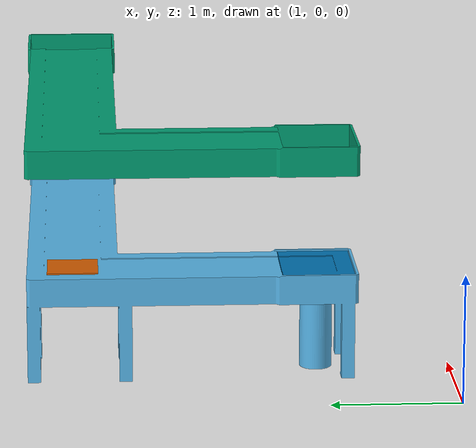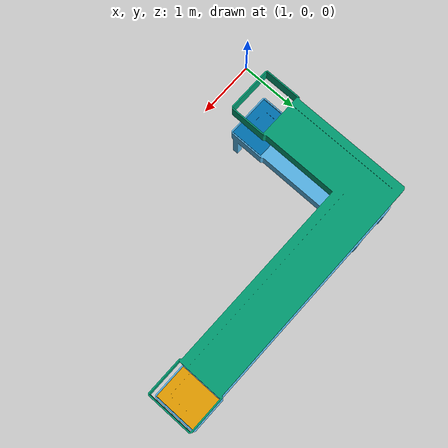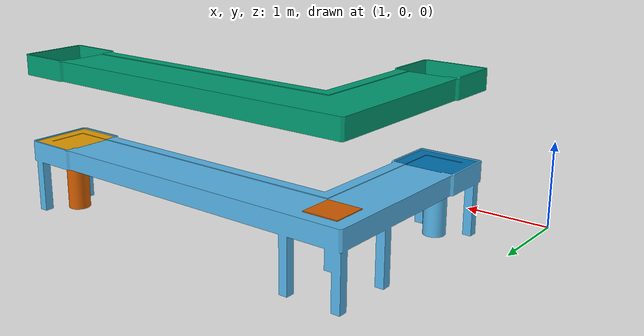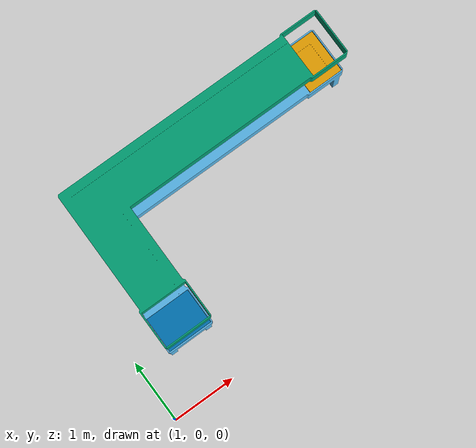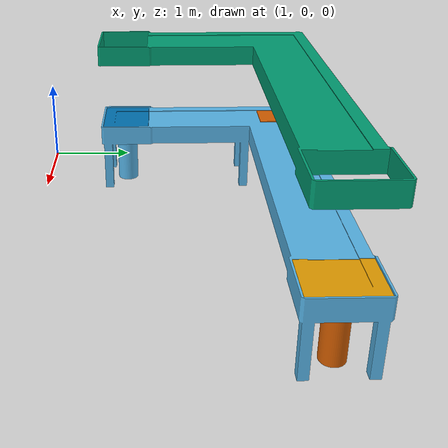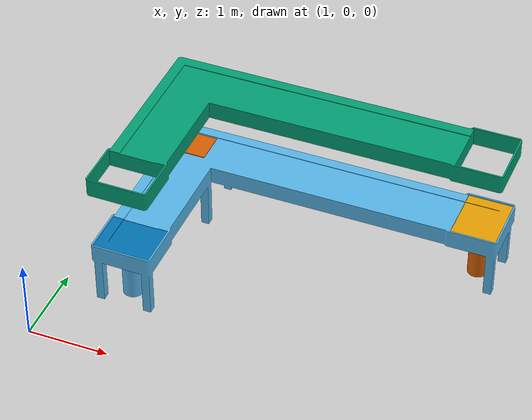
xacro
<?xml version="1.0"?>
<robot name="slider_lift_system" xmlns:xacro="http://www.ros.org/wiki/xacro">

    <link name="world" />

    <xacro:include filename="$(find slider_description)/urdf/lift.xacro" />
    <xacro:include filename="$(find slider_description)/urdf/carrier.xacro" />

    <xacro:arg name="name_space" default="" />
    <xacro:arg name="controller_yaml" default="" />

    <gazebo>
        <self_collide>true</self_collide>
        <plugin filename="gz_ros2_control-system" name="gz_ros2_control::GazeboSimROS2ControlPlugin">
            <ros>
                <namespace>$(arg name_space)</namespace>
            </ros>
            <parameters>$(arg controller_yaml)</parameters>
        </plugin>
    </gazebo>
</robot>

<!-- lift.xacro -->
<robot name="slider_lift_system" xmlns:xacro="http://www.ros.org/wiki/xacro">
    <xacro:include filename="$(find slider_description)/urdf/lift/lift_macro.xacro" />
    <xacro:include filename="$(find slider_description)/urdf/lift/lift_ros2_control.xacro" />

    <xacro:arg name="controller_yaml" default="" />
    <xacro:arg name="name_space" default="" />

    <xacro:property name="lower" value="0.0" />
    <xacro:property name="upper" value="0.65" />
    <xacro:property name="effort" value="0.2" />
    <xacro:property name="velocity" value="7000" />

    <!-- Plate 1 -->
    <!-- Joint mid: left_lift_mid_joint [position/position, velocity, effort] -->
    <!-- Joint top: left_lift_top_joint [position/position, velocity, effort] -->
    <xacro:vertical_lifts prefix="left_" parent="world" lower="${lower}"
        upper="${upper}" effort="${effort}" velocity="${velocity}">
        <origin xyz="0 0 0" rpy="0 0 0" />
    </xacro:vertical_lifts>

    <xacro:vertical_lifts prefix="right_" parent="world" lower="${lower}"
        upper="${upper}" effort="${effort}" velocity="${velocity}">
        <origin xyz="6.575 1.075 0" rpy="0 0 ${pi/2}" />
    </xacro:vertical_lifts>

    <xacro:lift_ros2_controller prefix="left_" lower_mid="${lower}"
        upper_mid="${upper}" lower_top="${lower}" upper_top="${upper}" />

    <xacro:lift_ros2_controller prefix="right_" lower_mid="${lower}"
        upper_mid="${upper}" lower_top="${lower}" upper_top="${upper}" />

</robot>

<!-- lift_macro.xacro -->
<robot xmlns:xacro="http://www.ros.org/wiki/xacro">
    <xacro:include filename="$(find slider_description)/urdf/common/slider_macro.xacro" />

    <xacro:property name="module" value="lift" />

    <xacro:macro name="vertical_lifts" params="prefix parent lower upper effort velocity *origin">
        <!-- ============================= BASE ============================= -->
        <xacro:static_slider prefix="${prefix}" name="lift_base" mass="84"
            parent="${parent}" vis_file="slider_lift_base"
            col_file="slider_lift_base" module="${module}"
            ixx="3.13892207" iyy="3.13892187" izz="1.07200081"
            inertia_origin="1.85000004 1.05000001 0.35500001">
            <xacro:insert_block name="origin" />
        </xacro:static_slider>

        <!-- ============================== MID ============================== -->
        <xacro:prismatic_slider prefix="${prefix}" name="lift_mid" mass="84"
            parent="${prefix}lift_base_link" lower="${lower}" upper="${upper}"
            effort="${effort}" velocity="${velocity}" module="${module}"
            ixx="2.27709013" iyy="2.27709005" izz="0.507751779"
            vis_file="slider_lift_mid" col_file="slider_lift_mid"
            axis_xyz="0 0 1" inertia_origin="1.84999997 1.05000001 0.35500001">
            <origin xyz="0 0 0 " rpy="0 0 0" />
        </xacro:prismatic_slider>

        <!-- =============================== TOP =============================== -->
        <xacro:prismatic_slider prefix="${prefix}" name="lift_top" mass="84"
            parent="${prefix}lift_mid_link" lower="${lower}" upper="${upper}"
            effort="${effort}" velocity="${velocity}" module="${module}"
            ixx="2.71250789" iyy="2.71250797" izz="0.234331075"
            vis_file="slider_lift_top" col_file="slider_lift_top"
            axis_xyz="0 0 1" inertia_origin="1.85000002 1.04999999 0.35500001">
            <origin xyz="0 0 0 " rpy="0 0 0" />
        </xacro:prismatic_slider>

        <!-- ============================== PLATE ============================== -->
        <xacro:static_slider prefix="${prefix}" name="lift_plate" mass="61"
            parent="${prefix}lift_top_link" vis_file="slider_lift_plate"
            col_file="slider_lift_plate" module="${module}"
            ixx="1.76610152" iyy="2.74538723" izz="4.08460247"
            inertia_origin="1.85000002 1.04877745 0.76211913">
            <origin xyz="0 0 0 " rpy="0 0 0" />
        </xacro:static_slider>

    </xacro:macro>

</robot>

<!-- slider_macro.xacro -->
<robot xmlns:xacro="http://www.ros.org/wiki/xacro">

    <xacro:macro name="slider_macro"
        params="prefix name mass type parent lower:=0.0 upper:=0.0 effort:=0.0 velocity:=0.0 ixx:=0.001 iyy:=0.001 izz:=0.001 vis_file:='' col_file:='' module:='' axis_xyz:='' damping:=0.001 friction:=0.001 inertia_origin:='' *origin">

        <link name="${prefix}${name}_link">
            <inertial>
                <xacro:if value="${inertia_origin != ''}">
                    <origin xyz="${inertia_origin}" rpy="0 0 0" />
                </xacro:if>

                <xacro:unless value="${inertia_origin != ''}">
                    <origin xyz="0 0 0" rpy="0 0 0" />
                </xacro:unless>

                <mass value="${mass}" />
                <inertia ixx="${ixx}" ixy="0" ixz="0" iyy="${iyy}" iyz="0" izz="${izz}" />
            </inertial>

            <xacro:if value="${vis_file != '' and col_file != '' and module != ''}">
                <visual>
                    <geometry>
                        <mesh
                            filename="package://slider_description/meshes/${module}/visual/${vis_file}.obj" />
                    </geometry>
                </visual>

                <collision>
                    <geometry>
                        <mesh
                            filename="package://slider_description/meshes/${module}/collision/${col_file}.stl" />
                    </geometry>
                </collision>
            </xacro:if>
        </link>

        <gazebo reference="${prefix}${name}_link">
            <gravity>true</gravity>
            <selfCollide>true</selfCollide>
        </gazebo>

        <joint name="${prefix}${name}_joint" type="${type}">
            <parent link="${parent}" />
            <child link="${prefix}${name}_link" />

            <xacro:insert_block name="origin" />

            <xacro:unless value="${type == 'fixed'}">
                <axis xyz="${axis_xyz}" />
                <limit lower="${lower}" upper="${upper}" effort="${effort}" velocity="${velocity}" />

                <dynamics damping="${damping}" friction="${friction}" />
            </xacro:unless>

        </joint>
    </xacro:macro>

    <xacro:macro name="null_prismatic_slider"
        params="prefix name parent lower upper effort velocity axis_xyz mass:=0.5 *origin">
        <xacro:slider_macro prefix="${prefix}" name="${name}" mass="${mass}"
            type="prismatic" parent="${parent}" lower="${lower}"
            upper="${upper}" effort="${effort}" velocity="${velocity}"
            axis_xyz="${axis_xyz}" damping="0.0" friction="0.0">
            <xacro:insert_block name="origin" />
        </xacro:slider_macro>
    </xacro:macro>

    <xacro:macro name="static_slider"
        params="prefix name mass parent vis_file col_file module ixx:=0.001 iyy:=0.001 izz:=0.001 inertia_origin='' *origin">
        <xacro:slider_macro prefix="${prefix}" name="${name}" mass="${mass}"
            type="fixed" parent="${parent}"
            vis_file="${vis_file}" col_file="${col_file}" module="${module}"
            ixx="${ixx}" iyy="${iyy}" izz="${izz}" inertia_origin="${inertia_origin}">
            <xacro:insert_block name="origin" />
        </xacro:slider_macro>
    </xacro:macro>

    <xacro:macro name="prismatic_slider"
        params="prefix name mass parent lower upper effort velocity ixx iyy izz vis_file col_file module axis_xyz inertia_origin='' *origin">
        <xacro:slider_macro prefix="${prefix}" name="${name}" mass="${mass}"
            type="prismatic" parent="${parent}" lower="${lower}" upper="${upper}"
            effort="${effort}" velocity="${velocity}"
            ixx="${ixx}" iyy="${iyy}" izz="${izz}" inertia_origin="${inertia_origin}"
            vis_file="${vis_file}" col_file="${col_file}" module="${module}"
            axis_xyz="${axis_xyz}" damping="0.0" friction="0.0">
            <xacro:insert_block name="origin" />
        </xacro:slider_macro>
    </xacro:macro>

</robot>

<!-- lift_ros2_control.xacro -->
<robot xmlns:xacro="http://www.ros.org/wiki/xacro">
    <xacro:include filename="$(find slider_description)/urdf/common/slider_ros2_macro.xacro" />

    <xacro:macro name="lift_ros2_controller" params="prefix lower_mid upper_mid lower_top upper_top">

        <xacro:ros2_control_system name="${prefix}LiftControl">

            <joint_interfaces>
                <xacro:prismatic_joint_interface joint_name="${prefix}lift_mid_joint"
                    lower="${lower_mid}" upper="${upper_mid}" />

                <xacro:prismatic_joint_interface joint_name="${prefix}lift_top_joint"
                    lower="${lower_top}" upper="${upper_top}" />
            </joint_interfaces>

        </xacro:ros2_control_system>
    </xacro:macro>

</robot>

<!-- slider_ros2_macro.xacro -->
<robot xmlns:xacro="http://www.ros.org/wiki/xacro">

    <xacro:macro name="prismatic_joint_interface" params="joint_name lower upper initial:=0.0002">
        <joint name="${joint_name}">
            <command_interface name="position">
                <param name="min">${lower}</param>
                <param name="max">${upper}</param>
            </command_interface>
            <state_interface name="position">
                <param name="initial_value">${initial}</param>
            </state_interface>
            <state_interface name="velocity" />
            <state_interface name="effort" />
        </joint>
    </xacro:macro>

    <xacro:macro name="passive_joint_interface" params="joint_name initial:=0.0002">
        <joint name="${joint_name}">
            <state_interface name="position">
                <param name="initial_value">${initial}</param>
            </state_interface>
            <state_interface name="velocity" />
        </joint>
    </xacro:macro>

    <xacro:macro name="ros2_control_system" params="name **joint_interfaces">
        <ros2_control name="${name}" type="system">
            <hardware>
                <plugin>gz_ros2_control/GazeboSimSystem</plugin>
            </hardware>

            <xacro:insert_block name="joint_interfaces" />
        </ros2_control>
    </xacro:macro>

</robot>

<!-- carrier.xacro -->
<robot name="slider_carrier_system" xmlns:xacro="http://www.ros.org/wiki/xacro">
    <xacro:include filename="$(find slider_description)/urdf/carrier/carrier_macro.xacro" />
    <xacro:include filename="$(find slider_description)/urdf/carrier/carrier_ros2_control.xacro" />

    <xacro:arg name="controller_yaml" default="" />
    <xacro:arg name="name_space" default="" />

    <xacro:property name="lower_x" value="0.0" />
    <xacro:property name="upper_x" value="3.7" />

    <xacro:property name="lower_y" value="-1.85" />
    <xacro:property name="upper_y" value="0.001" />

    <xacro:property name="lower_z" value="0.0" />
    <xacro:property name="upper_z" value="2.0" />

    <xacro:property name="velocity" value="10" />
    <xacro:property name="effort" value="5000" />

    <xacro:slider_carrier parent="world"
        origin_bottom="0 0 0" origin_top="0 0 1" plate_z="0"
        lower_x="${lower_x}" upper_x="${upper_x}"
        lower_y="${lower_y}" upper_y="${upper_y}"
        lower_z="${lower_z}" upper_z="${upper_z}"
        velocity="${velocity}" effort="${effort}" />

    <!-- Plate 1 -->
    <!-- Joint X: p1_carrier_x_joint [position/position, velocity, effort] -->
    <!-- Joint Y: p1_carrier_y_joint [position/position, velocity, effort] -->
    <!-- Joint Z: p1_carrier_z_joint [null/position, velocity, effort] -->
    <xacro:carrier_plates prefix="p1_" parent="world" velocity="${velocity}"
        effort="${effort}" lower_x="${lower_x}" upper_x="${upper_x}"
        lower_y="${lower_y}" upper_y="${upper_y}" lower_z="${lower_z}" upper_z="${upper_z}">
        <origin xyz="0 0 0" rpy="0 0 0" />
    </xacro:carrier_plates>

    <xacro:carrier_ros2_controller prefix="p1_" lower_x="${lower_x}" upper_x="${upper_x}"
        lower_y="${lower_y}" upper_y="${upper_y}" />

</robot>

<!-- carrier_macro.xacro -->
<robot xmlns:xacro="http://www.ros.org/wiki/xacro">
    <xacro:include filename="$(find slider_description)/urdf/common/slider_macro.xacro" />

    <xacro:property name="module" value="carrier" />

    <xacro:macro name="carrier_plates" params="prefix parent velocity effort lower_x upper_x lower_y upper_y lower_z upper_z *origin">
        <xacro:null_prismatic_slider prefix="${prefix}" name="carrier_x"
            parent="${parent}" lower="${lower_x}" upper="${upper_x}"
            effort="${effort}" velocity="${velocity}" axis_xyz="1 0 0">
            <xacro:insert_block name="origin" />
        </xacro:null_prismatic_slider>

        <xacro:null_prismatic_slider prefix="${prefix}" name="carrier_y"
            parent="${prefix}carrier_x_link"
            lower="${lower_y}" upper="${upper_y}" effort="${effort}"
            velocity="${velocity}" axis_xyz="0 1 0">
            <xacro:insert_block name="origin" />
        </xacro:null_prismatic_slider>

        <xacro:prismatic_slider prefix="${prefix}" name="carrier_z"
            mass="1.2" parent="${prefix}carrier_y_link"
            lower="${lower_z}" upper="${upper_z}" effort="${effort}"
            velocity="${velocity}" ixx="0.0150472272" iyy="0.0150472456"
            izz="0.0300746999" vis_file="conveyor_plate" col_file="conveyor_plate"
            module="${module}" axis_xyz="0 0 1">
            <xacro:insert_block name="origin" />
        </xacro:prismatic_slider>
    </xacro:macro>

    <xacro:macro name="slider_carrier"
        params="parent origin_bottom origin_top plate_z lower_x upper_x lower_y upper_y lower_z upper_z velocity effort">
        <xacro:static_slider prefix="" name="slider_bottom"
            mass="5" parent="${parent}" vis_file="slider_bottom"
            col_file="slider_bottom" module="${module}">
            <origin xyz="${origin_bottom}" rpy="0 0 0" />
        </xacro:static_slider>

        <xacro:static_slider prefix="" name="slider_top"
            mass="5" parent="${parent}" vis_file="slider_top"
            col_file="slider_top" module="${module}">
            <origin xyz="${origin_top}" rpy="0 0 0" />
        </xacro:static_slider>
    </xacro:macro>

</robot>

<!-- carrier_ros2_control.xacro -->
<robot xmlns:xacro="http://www.ros.org/wiki/xacro">
    <xacro:include filename="$(find slider_description)/urdf/common/slider_ros2_macro.xacro" />

    <xacro:macro name="carrier_ros2_controller" params="prefix lower_x upper_x lower_y upper_y">

        <xacro:ros2_control_system name="${prefix}CarrierControl">

            <joint_interfaces>
                <xacro:prismatic_joint_interface joint_name="${prefix}carrier_x_joint"
                    lower="${lower_x}" upper="${upper_x}" />

                <xacro:prismatic_joint_interface joint_name="${prefix}carrier_y_joint"
                    lower="${lower_y}" upper="${upper_y}" />

                <xacro:passive_joint_interface joint_name="${prefix}carrier_z_joint" />
            </joint_interfaces>

        </xacro:ros2_control_system>
    </xacro:macro>

</robot>
